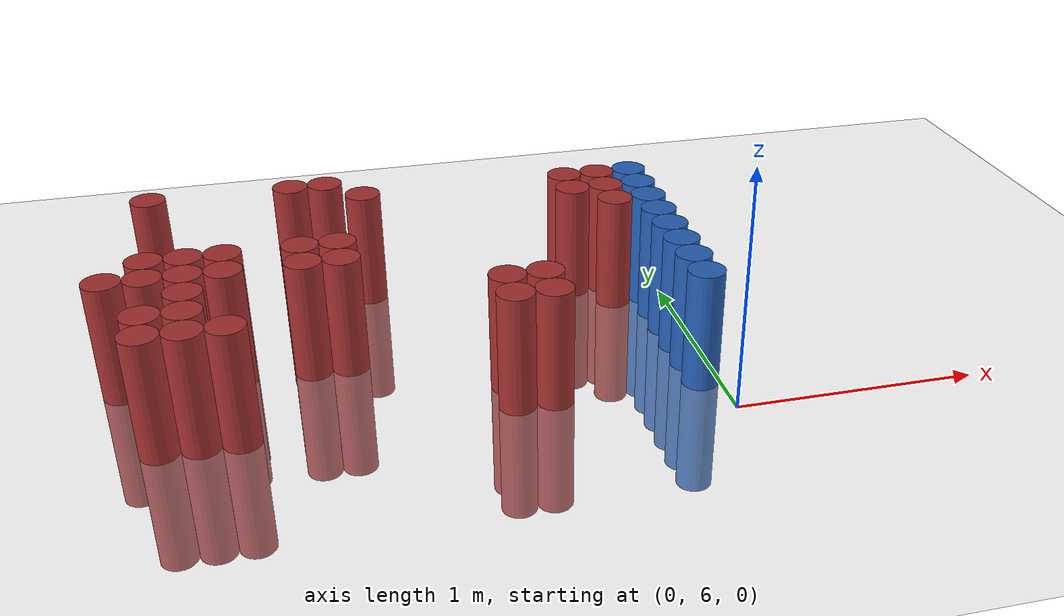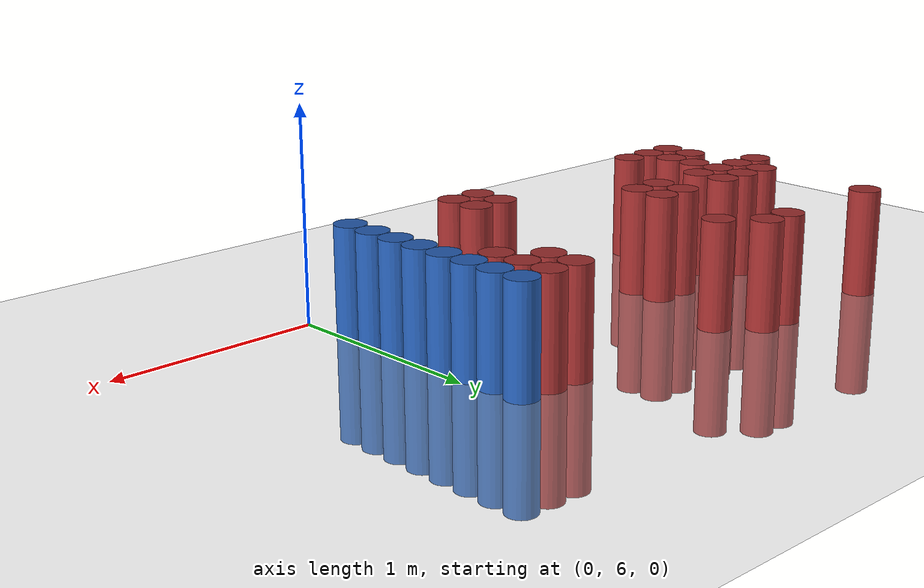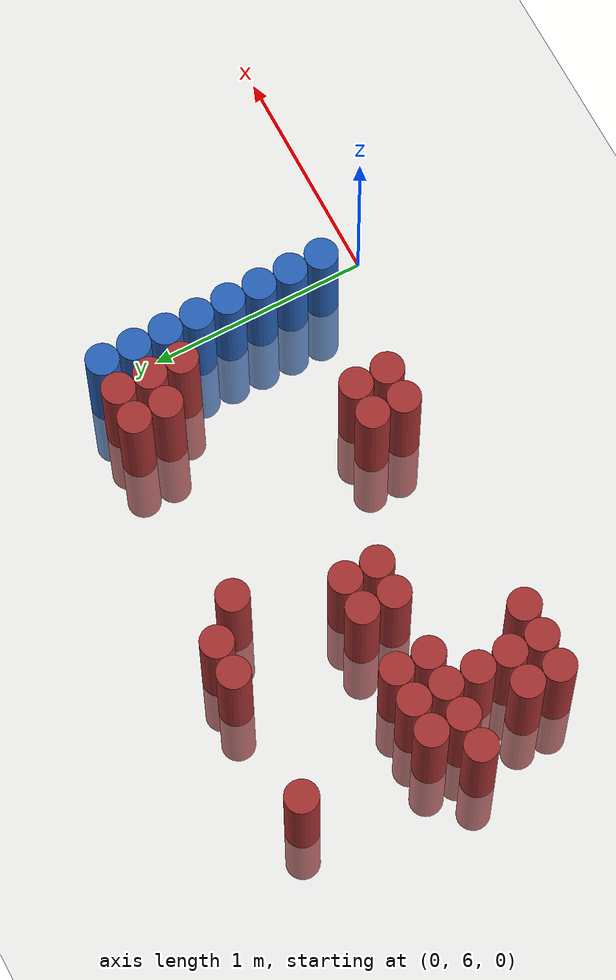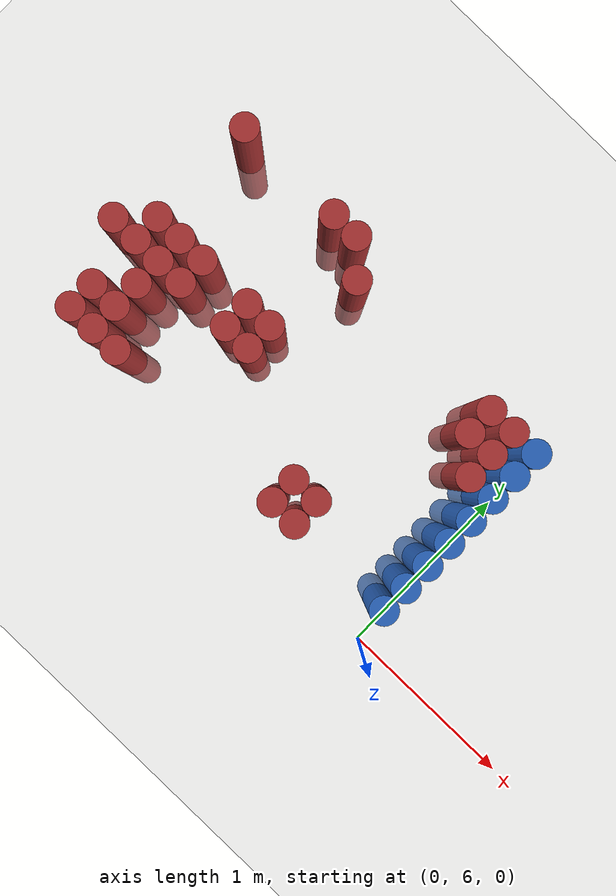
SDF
<sdf version="1.6">
 <world name="default">
  <model name="ground_plane">
   <static>1</static>
   <link name="link">
    <collision name="collision">
     <geometry><plane><normal>0 0 1</normal><size>100 100</size></plane></geometry>
     <surface><friction><ode><mu>100</mu><mu2>50</mu2></ode></friction></surface>
    </collision>
    <visual name="visual">
     <cast_shadows>0</cast_shadows>
     <geometry><plane><normal>0 0 1</normal><size>100 100</size></plane></geometry>
     <material>
      <script><uri>file://media/materials/scripts/gazebo.material</uri><name>Gazebo/Grey</name></script>
     </material>
    </visual>
   </link>
  </model>
  <model name="unit_cylinder_193">
   <static>1</static>
   <pose>-2.325000 6.675000 0.000000 0.000000 0.000000 0.000000</pose>
   <link name="link">
    <inertial>
     <mass>1</mass>
     <inertia><ixx>0.145833</ixx><ixy>0</ixy><ixz>0</ixz><iyy>0.145833</iyy><iyz>0</iyz><izz>0.125</izz></inertia>
    </inertial>
    <collision name="collision">
     <geometry><cylinder><radius>0.075000</radius><length>1</length></cylinder></geometry>
    </collision>
    <visual name="visual">
     <geometry><cylinder><radius>0.075000</radius><length>1</length></cylinder></geometry>
     <material>
      <ambient>0.648000 0.192000 0.192000 1</ambient>
      <diffuse>0.648000 0.192000 0.192000 1</diffuse>
     </material>
     <material>
      <script><name>Gazebo/Grey</name><uri>file://media/materials/scripts/gazebo.material</uri></script>
     </material>
    </visual>
    <sensor name="sensor_contact" type="contact"><contact><collision>collision</collision></contact></sensor>
   </link>
   <plugin filename="gz-sim-touchplugin-system" name="gz::sim::systems::TouchPlugin">
    <target>robot</target>
    <namespace>robot</namespace>
    <time>0.001</time>
    <enabled>true</enabled>
   </plugin>
  </model>
  <model name="unit_cylinder_197">
   <static>1</static>
   <pose>-2.175000 6.225000 0.000000 0.000000 0.000000 0.000000</pose>
   <link name="link">
    <inertial>
     <mass>1</mass>
     <inertia><ixx>0.145833</ixx><ixy>0</ixy><ixz>0</ixz><iyy>0.145833</iyy><iyz>0</iyz><izz>0.125</izz></inertia>
    </inertial>
    <collision name="collision">
     <geometry><cylinder><radius>0.075000</radius><length>1</length></cylinder></geometry>
    </collision>
    <visual name="visual">
     <geometry><cylinder><radius>0.075000</radius><length>1</length></cylinder></geometry>
     <material>
      <ambient>0.648000 0.192000 0.192000 1</ambient>
      <diffuse>0.648000 0.192000 0.192000 1</diffuse>
     </material>
     <material>
      <script><name>Gazebo/Grey</name><uri>file://media/materials/scripts/gazebo.material</uri></script>
     </material>
    </visual>
    <sensor name="sensor_contact" type="contact"><contact><collision>collision</collision></contact></sensor>
   </link>
   <plugin filename="gz-sim-touchplugin-system" name="gz::sim::systems::TouchPlugin">
    <target>robot</target>
    <namespace>robot</namespace>
    <time>0.001</time>
    <enabled>true</enabled>
   </plugin>
  </model>
  <model name="unit_cylinder_198">
   <static>1</static>
   <pose>-2.175000 6.375000 0.000000 0.000000 0.000000 0.000000</pose>
   <link name="link">
    <inertial>
     <mass>1</mass>
     <inertia><ixx>0.145833</ixx><ixy>0</ixy><ixz>0</ixz><iyy>0.145833</iyy><iyz>0</iyz><izz>0.125</izz></inertia>
    </inertial>
    <collision name="collision">
     <geometry><cylinder><radius>0.075000</radius><length>1</length></cylinder></geometry>
    </collision>
    <visual name="visual">
     <geometry><cylinder><radius>0.075000</radius><length>1</length></cylinder></geometry>
     <material>
      <ambient>0.648000 0.192000 0.192000 1</ambient>
      <diffuse>0.648000 0.192000 0.192000 1</diffuse>
     </material>
     <material>
      <script><name>Gazebo/Grey</name><uri>file://media/materials/scripts/gazebo.material</uri></script>
     </material>
    </visual>
    <sensor name="sensor_contact" type="contact"><contact><collision>collision</collision></contact></sensor>
   </link>
   <plugin filename="gz-sim-touchplugin-system" name="gz::sim::systems::TouchPlugin">
    <target>robot</target>
    <namespace>robot</namespace>
    <time>0.001</time>
    <enabled>true</enabled>
   </plugin>
  </model>
  <model name="unit_cylinder_199">
   <static>1</static>
   <pose>-2.175000 6.675000 0.000000 0.000000 0.000000 0.000000</pose>
   <link name="link">
    <inertial>
     <mass>1</mass>
     <inertia><ixx>0.145833</ixx><ixy>0</ixy><ixz>0</ixz><iyy>0.145833</iyy><iyz>0</iyz><izz>0.125</izz></inertia>
    </inertial>
    <collision name="collision">
     <geometry><cylinder><radius>0.075000</radius><length>1</length></cylinder></geometry>
    </collision>
    <visual name="visual">
     <geometry><cylinder><radius>0.075000</radius><length>1</length></cylinder></geometry>
     <material>
      <ambient>0.648000 0.192000 0.192000 1</ambient>
      <diffuse>0.648000 0.192000 0.192000 1</diffuse>
     </material>
     <material>
      <script><name>Gazebo/Grey</name><uri>file://media/materials/scripts/gazebo.material</uri></script>
     </material>
    </visual>
    <sensor name="sensor_contact" type="contact"><contact><collision>collision</collision></contact></sensor>
   </link>
   <plugin filename="gz-sim-touchplugin-system" name="gz::sim::systems::TouchPlugin">
    <target>robot</target>
    <namespace>robot</namespace>
    <time>0.001</time>
    <enabled>true</enabled>
   </plugin>
  </model>
  <model name="unit_cylinder_200">
   <static>1</static>
   <pose>-2.175000 6.825000 0.000000 0.000000 0.000000 0.000000</pose>
   <link name="link">
    <inertial>
     <mass>1</mass>
     <inertia><ixx>0.145833</ixx><ixy>0</ixy><ixz>0</ixz><iyy>0.145833</iyy><iyz>0</iyz><izz>0.125</izz></inertia>
    </inertial>
    <collision name="collision">
     <geometry><cylinder><radius>0.075000</radius><length>1</length></cylinder></geometry>
    </collision>
    <visual name="visual">
     <geometry><cylinder><radius>0.075000</radius><length>1</length></cylinder></geometry>
     <material>
      <ambient>0.648000 0.192000 0.192000 1</ambient>
      <diffuse>0.648000 0.192000 0.192000 1</diffuse>
     </material>
     <material>
      <script><name>Gazebo/Grey</name><uri>file://media/materials/scripts/gazebo.material</uri></script>
     </material>
    </visual>
    <sensor name="sensor_contact" type="contact"><contact><collision>collision</collision></contact></sensor>
   </link>
   <plugin filename="gz-sim-touchplugin-system" name="gz::sim::systems::TouchPlugin">
    <target>robot</target>
    <namespace>robot</namespace>
    <time>0.001</time>
    <enabled>true</enabled>
   </plugin>
  </model>
  <model name="unit_cylinder_201">
   <static>1</static>
   <pose>-2.175000 7.425000 0.000000 0.000000 0.000000 0.000000</pose>
   <link name="link">
    <inertial>
     <mass>1</mass>
     <inertia><ixx>0.145833</ixx><ixy>0</ixy><ixz>0</ixz><iyy>0.145833</iyy><iyz>0</iyz><izz>0.125</izz></inertia>
    </inertial>
    <collision name="collision">
     <geometry><cylinder><radius>0.075000</radius><length>1</length></cylinder></geometry>
    </collision>
    <visual name="visual">
     <geometry><cylinder><radius>0.075000</radius><length>1</length></cylinder></geometry>
     <material>
      <ambient>0.648000 0.192000 0.192000 1</ambient>
      <diffuse>0.648000 0.192000 0.192000 1</diffuse>
     </material>
     <material>
      <script><name>Gazebo/Grey</name><uri>file://media/materials/scripts/gazebo.material</uri></script>
     </material>
    </visual>
    <sensor name="sensor_contact" type="contact"><contact><collision>collision</collision></contact></sensor>
   </link>
   <plugin filename="gz-sim-touchplugin-system" name="gz::sim::systems::TouchPlugin">
    <target>robot</target>
    <namespace>robot</namespace>
    <time>0.001</time>
    <enabled>true</enabled>
   </plugin>
  </model>
  <model name="unit_cylinder_206">
   <static>1</static>
   <pose>-2.025000 6.225000 0.000000 0.000000 0.000000 0.000000</pose>
   <link name="link">
    <inertial>
     <mass>1</mass>
     <inertia><ixx>0.145833</ixx><ixy>0</ixy><ixz>0</ixz><iyy>0.145833</iyy><iyz>0</iyz><izz>0.125</izz></inertia>
    </inertial>
    <collision name="collision">
     <geometry><cylinder><radius>0.075000</radius><length>1</length></cylinder></geometry>
    </collision>
    <visual name="visual">
     <geometry><cylinder><radius>0.075000</radius><length>1</length></cylinder></geometry>
     <material>
      <ambient>0.648000 0.192000 0.192000 1</ambient>
      <diffuse>0.648000 0.192000 0.192000 1</diffuse>
     </material>
     <material>
      <script><name>Gazebo/Grey</name><uri>file://media/materials/scripts/gazebo.material</uri></script>
     </material>
    </visual>
    <sensor name="sensor_contact" type="contact"><contact><collision>collision</collision></contact></sensor>
   </link>
   <plugin filename="gz-sim-touchplugin-system" name="gz::sim::systems::TouchPlugin">
    <target>robot</target>
    <namespace>robot</namespace>
    <time>0.001</time>
    <enabled>true</enabled>
   </plugin>
  </model>
  <model name="unit_cylinder_207">
   <static>1</static>
   <pose>-2.025000 6.375000 0.000000 0.000000 0.000000 0.000000</pose>
   <link name="link">
    <inertial>
     <mass>1</mass>
     <inertia><ixx>0.145833</ixx><ixy>0</ixy><ixz>0</ixz><iyy>0.145833</iyy><iyz>0</iyz><izz>0.125</izz></inertia>
    </inertial>
    <collision name="collision">
     <geometry><cylinder><radius>0.075000</radius><length>1</length></cylinder></geometry>
    </collision>
    <visual name="visual">
     <geometry><cylinder><radius>0.075000</radius><length>1</length></cylinder></geometry>
     <material>
      <ambient>0.648000 0.192000 0.192000 1</ambient>
      <diffuse>0.648000 0.192000 0.192000 1</diffuse>
     </material>
     <material>
      <script><name>Gazebo/Grey</name><uri>file://media/materials/scripts/gazebo.material</uri></script>
     </material>
    </visual>
    <sensor name="sensor_contact" type="contact"><contact><collision>collision</collision></contact></sensor>
   </link>
   <plugin filename="gz-sim-touchplugin-system" name="gz::sim::systems::TouchPlugin">
    <target>robot</target>
    <namespace>robot</namespace>
    <time>0.001</time>
    <enabled>true</enabled>
   </plugin>
  </model>
  <model name="unit_cylinder_208">
   <static>1</static>
   <pose>-2.025000 6.525000 0.000000 0.000000 0.000000 0.000000</pose>
   <link name="link">
    <inertial>
     <mass>1</mass>
     <inertia><ixx>0.145833</ixx><ixy>0</ixy><ixz>0</ixz><iyy>0.145833</iyy><iyz>0</iyz><izz>0.125</izz></inertia>
    </inertial>
    <collision name="collision">
     <geometry><cylinder><radius>0.075000</radius><length>1</length></cylinder></geometry>
    </collision>
    <visual name="visual">
     <geometry><cylinder><radius>0.075000</radius><length>1</length></cylinder></geometry>
     <material>
      <ambient>0.648000 0.192000 0.192000 1</ambient>
      <diffuse>0.648000 0.192000 0.192000 1</diffuse>
     </material>
     <material>
      <script><name>Gazebo/Grey</name><uri>file://media/materials/scripts/gazebo.material</uri></script>
     </material>
    </visual>
    <sensor name="sensor_contact" type="contact"><contact><collision>collision</collision></contact></sensor>
   </link>
   <plugin filename="gz-sim-touchplugin-system" name="gz::sim::systems::TouchPlugin">
    <target>robot</target>
    <namespace>robot</namespace>
    <time>0.001</time>
    <enabled>true</enabled>
   </plugin>
  </model>
  <model name="unit_cylinder_209">
   <static>1</static>
   <pose>-2.025000 6.675000 0.000000 0.000000 0.000000 0.000000</pose>
   <link name="link">
    <inertial>
     <mass>1</mass>
     <inertia><ixx>0.145833</ixx><ixy>0</ixy><ixz>0</ixz><iyy>0.145833</iyy><iyz>0</iyz><izz>0.125</izz></inertia>
    </inertial>
    <collision name="collision">
     <geometry><cylinder><radius>0.075000</radius><length>1</length></cylinder></geometry>
    </collision>
    <visual name="visual">
     <geometry><cylinder><radius>0.075000</radius><length>1</length></cylinder></geometry>
     <material>
      <ambient>0.648000 0.192000 0.192000 1</ambient>
      <diffuse>0.648000 0.192000 0.192000 1</diffuse>
     </material>
     <material>
      <script><name>Gazebo/Grey</name><uri>file://media/materials/scripts/gazebo.material</uri></script>
     </material>
    </visual>
    <sensor name="sensor_contact" type="contact"><contact><collision>collision</collision></contact></sensor>
   </link>
   <plugin filename="gz-sim-touchplugin-system" name="gz::sim::systems::TouchPlugin">
    <target>robot</target>
    <namespace>robot</namespace>
    <time>0.001</time>
    <enabled>true</enabled>
   </plugin>
  </model>
  <model name="unit_cylinder_210">
   <static>1</static>
   <pose>-2.025000 6.825000 0.000000 0.000000 0.000000 0.000000</pose>
   <link name="link">
    <inertial>
     <mass>1</mass>
     <inertia><ixx>0.145833</ixx><ixy>0</ixy><ixz>0</ixz><iyy>0.145833</iyy><iyz>0</iyz><izz>0.125</izz></inertia>
    </inertial>
    <collision name="collision">
     <geometry><cylinder><radius>0.075000</radius><length>1</length></cylinder></geometry>
    </collision>
    <visual name="visual">
     <geometry><cylinder><radius>0.075000</radius><length>1</length></cylinder></geometry>
     <material>
      <ambient>0.648000 0.192000 0.192000 1</ambient>
      <diffuse>0.648000 0.192000 0.192000 1</diffuse>
     </material>
     <material>
      <script><name>Gazebo/Grey</name><uri>file://media/materials/scripts/gazebo.material</uri></script>
     </material>
    </visual>
    <sensor name="sensor_contact" type="contact"><contact><collision>collision</collision></contact></sensor>
   </link>
   <plugin filename="gz-sim-touchplugin-system" name="gz::sim::systems::TouchPlugin">
    <target>robot</target>
    <namespace>robot</namespace>
    <time>0.001</time>
    <enabled>true</enabled>
   </plugin>
  </model>
  <model name="unit_cylinder_217">
   <static>1</static>
   <pose>-1.875000 6.225000 0.000000 0.000000 0.000000 0.000000</pose>
   <link name="link">
    <inertial>
     <mass>1</mass>
     <inertia><ixx>0.145833</ixx><ixy>0</ixy><ixz>0</ixz><iyy>0.145833</iyy><iyz>0</iyz><izz>0.125</izz></inertia>
    </inertial>
    <collision name="collision">
     <geometry><cylinder><radius>0.075000</radius><length>1</length></cylinder></geometry>
    </collision>
    <visual name="visual">
     <geometry><cylinder><radius>0.075000</radius><length>1</length></cylinder></geometry>
     <material>
      <ambient>0.648000 0.192000 0.192000 1</ambient>
      <diffuse>0.648000 0.192000 0.192000 1</diffuse>
     </material>
     <material>
      <script><name>Gazebo/Grey</name><uri>file://media/materials/scripts/gazebo.material</uri></script>
     </material>
    </visual>
    <sensor name="sensor_contact" type="contact"><contact><collision>collision</collision></contact></sensor>
   </link>
   <plugin filename="gz-sim-touchplugin-system" name="gz::sim::systems::TouchPlugin">
    <target>robot</target>
    <namespace>robot</namespace>
    <time>0.001</time>
    <enabled>true</enabled>
   </plugin>
  </model>
  <model name="unit_cylinder_218">
   <static>1</static>
   <pose>-1.875000 6.675000 0.000000 0.000000 0.000000 0.000000</pose>
   <link name="link">
    <inertial>
     <mass>1</mass>
     <inertia><ixx>0.145833</ixx><ixy>0</ixy><ixz>0</ixz><iyy>0.145833</iyy><iyz>0</iyz><izz>0.125</izz></inertia>
    </inertial>
    <collision name="collision">
     <geometry><cylinder><radius>0.075000</radius><length>1</length></cylinder></geometry>
    </collision>
    <visual name="visual">
     <geometry><cylinder><radius>0.075000</radius><length>1</length></cylinder></geometry>
     <material>
      <ambient>0.648000 0.192000 0.192000 1</ambient>
      <diffuse>0.648000 0.192000 0.192000 1</diffuse>
     </material>
     <material>
      <script><name>Gazebo/Grey</name><uri>file://media/materials/scripts/gazebo.material</uri></script>
     </material>
    </visual>
    <sensor name="sensor_contact" type="contact"><contact><collision>collision</collision></contact></sensor>
   </link>
   <plugin filename="gz-sim-touchplugin-system" name="gz::sim::systems::TouchPlugin">
    <target>robot</target>
    <namespace>robot</namespace>
    <time>0.001</time>
    <enabled>true</enabled>
   </plugin>
  </model>
  <model name="unit_cylinder_219">
   <static>1</static>
   <pose>-1.875000 6.825000 0.000000 0.000000 0.000000 0.000000</pose>
   <link name="link">
    <inertial>
     <mass>1</mass>
     <inertia><ixx>0.145833</ixx><ixy>0</ixy><ixz>0</ixz><iyy>0.145833</iyy><iyz>0</iyz><izz>0.125</izz></inertia>
    </inertial>
    <collision name="collision">
     <geometry><cylinder><radius>0.075000</radius><length>1</length></cylinder></geometry>
    </collision>
    <visual name="visual">
     <geometry><cylinder><radius>0.075000</radius><length>1</length></cylinder></geometry>
     <material>
      <ambient>0.648000 0.192000 0.192000 1</ambient>
      <diffuse>0.648000 0.192000 0.192000 1</diffuse>
     </material>
     <material>
      <script><name>Gazebo/Grey</name><uri>file://media/materials/scripts/gazebo.material</uri></script>
     </material>
    </visual>
    <sensor name="sensor_contact" type="contact"><contact><collision>collision</collision></contact></sensor>
   </link>
   <plugin filename="gz-sim-touchplugin-system" name="gz::sim::systems::TouchPlugin">
    <target>robot</target>
    <namespace>robot</namespace>
    <time>0.001</time>
    <enabled>true</enabled>
   </plugin>
  </model>
  <model name="unit_cylinder_238">
   <static>1</static>
   <pose>-1.575000 6.675000 0.000000 0.000000 0.000000 0.000000</pose>
   <link name="link">
    <inertial>
     <mass>1</mass>
     <inertia><ixx>0.145833</ixx><ixy>0</ixy><ixz>0</ixz><iyy>0.145833</iyy><iyz>0</iyz><izz>0.125</izz></inertia>
    </inertial>
    <collision name="collision">
     <geometry><cylinder><radius>0.075000</radius><length>1</length></cylinder></geometry>
    </collision>
    <visual name="visual">
     <geometry><cylinder><radius>0.075000</radius><length>1</length></cylinder></geometry>
     <material>
      <ambient>0.648000 0.192000 0.192000 1</ambient>
      <diffuse>0.648000 0.192000 0.192000 1</diffuse>
     </material>
     <material>
      <script><name>Gazebo/Grey</name><uri>file://media/materials/scripts/gazebo.material</uri></script>
     </material>
    </visual>
    <sensor name="sensor_contact" type="contact"><contact><collision>collision</collision></contact></sensor>
   </link>
   <plugin filename="gz-sim-touchplugin-system" name="gz::sim::systems::TouchPlugin">
    <target>robot</target>
    <namespace>robot</namespace>
    <time>0.001</time>
    <enabled>true</enabled>
   </plugin>
  </model>
  <model name="unit_cylinder_239">
   <static>1</static>
   <pose>-1.575000 6.825000 0.000000 0.000000 0.000000 0.000000</pose>
   <link name="link">
    <inertial>
     <mass>1</mass>
     <inertia><ixx>0.145833</ixx><ixy>0</ixy><ixz>0</ixz><iyy>0.145833</iyy><iyz>0</iyz><izz>0.125</izz></inertia>
    </inertial>
    <collision name="collision">
     <geometry><cylinder><radius>0.075000</radius><length>1</length></cylinder></geometry>
    </collision>
    <visual name="visual">
     <geometry><cylinder><radius>0.075000</radius><length>1</length></cylinder></geometry>
     <material>
      <ambient>0.648000 0.192000 0.192000 1</ambient>
      <diffuse>0.648000 0.192000 0.192000 1</diffuse>
     </material>
     <material>
      <script><name>Gazebo/Grey</name><uri>file://media/materials/scripts/gazebo.material</uri></script>
     </material>
    </visual>
    <sensor name="sensor_contact" type="contact"><contact><collision>collision</collision></contact></sensor>
   </link>
   <plugin filename="gz-sim-touchplugin-system" name="gz::sim::systems::TouchPlugin">
    <target>robot</target>
    <namespace>robot</namespace>
    <time>0.001</time>
    <enabled>true</enabled>
   </plugin>
  </model>
  <model name="unit_cylinder_240">
   <static>1</static>
   <pose>-1.575000 7.425000 0.000000 0.000000 0.000000 0.000000</pose>
   <link name="link">
    <inertial>
     <mass>1</mass>
     <inertia><ixx>0.145833</ixx><ixy>0</ixy><ixz>0</ixz><iyy>0.145833</iyy><iyz>0</iyz><izz>0.125</izz></inertia>
    </inertial>
    <collision name="collision">
     <geometry><cylinder><radius>0.075000</radius><length>1</length></cylinder></geometry>
    </collision>
    <visual name="visual">
     <geometry><cylinder><radius>0.075000</radius><length>1</length></cylinder></geometry>
     <material>
      <ambient>0.648000 0.192000 0.192000 1</ambient>
      <diffuse>0.648000 0.192000 0.192000 1</diffuse>
     </material>
     <material>
      <script><name>Gazebo/Grey</name><uri>file://media/materials/scripts/gazebo.material</uri></script>
     </material>
    </visual>
    <sensor name="sensor_contact" type="contact"><contact><collision>collision</collision></contact></sensor>
   </link>
   <plugin filename="gz-sim-touchplugin-system" name="gz::sim::systems::TouchPlugin">
    <target>robot</target>
    <namespace>robot</namespace>
    <time>0.001</time>
    <enabled>true</enabled>
   </plugin>
  </model>
  <model name="unit_cylinder_245">
   <static>1</static>
   <pose>-1.425000 6.675000 0.000000 0.000000 0.000000 0.000000</pose>
   <link name="link">
    <inertial>
     <mass>1</mass>
     <inertia><ixx>0.145833</ixx><ixy>0</ixy><ixz>0</ixz><iyy>0.145833</iyy><iyz>0</iyz><izz>0.125</izz></inertia>
    </inertial>
    <collision name="collision">
     <geometry><cylinder><radius>0.075000</radius><length>1</length></cylinder></geometry>
    </collision>
    <visual name="visual">
     <geometry><cylinder><radius>0.075000</radius><length>1</length></cylinder></geometry>
     <material>
      <ambient>0.648000 0.192000 0.192000 1</ambient>
      <diffuse>0.648000 0.192000 0.192000 1</diffuse>
     </material>
     <material>
      <script><name>Gazebo/Grey</name><uri>file://media/materials/scripts/gazebo.material</uri></script>
     </material>
    </visual>
    <sensor name="sensor_contact" type="contact"><contact><collision>collision</collision></contact></sensor>
   </link>
   <plugin filename="gz-sim-touchplugin-system" name="gz::sim::systems::TouchPlugin">
    <target>robot</target>
    <namespace>robot</namespace>
    <time>0.001</time>
    <enabled>true</enabled>
   </plugin>
  </model>
  <model name="unit_cylinder_246">
   <static>1</static>
   <pose>-1.425000 6.825000 0.000000 0.000000 0.000000 0.000000</pose>
   <link name="link">
    <inertial>
     <mass>1</mass>
     <inertia><ixx>0.145833</ixx><ixy>0</ixy><ixz>0</ixz><iyy>0.145833</iyy><iyz>0</iyz><izz>0.125</izz></inertia>
    </inertial>
    <collision name="collision">
     <geometry><cylinder><radius>0.075000</radius><length>1</length></cylinder></geometry>
    </collision>
    <visual name="visual">
     <geometry><cylinder><radius>0.075000</radius><length>1</length></cylinder></geometry>
     <material>
      <ambient>0.648000 0.192000 0.192000 1</ambient>
      <diffuse>0.648000 0.192000 0.192000 1</diffuse>
     </material>
     <material>
      <script><name>Gazebo/Grey</name><uri>file://media/materials/scripts/gazebo.material</uri></script>
     </material>
    </visual>
    <sensor name="sensor_contact" type="contact"><contact><collision>collision</collision></contact></sensor>
   </link>
   <plugin filename="gz-sim-touchplugin-system" name="gz::sim::systems::TouchPlugin">
    <target>robot</target>
    <namespace>robot</namespace>
    <time>0.001</time>
    <enabled>true</enabled>
   </plugin>
  </model>
  <model name="unit_cylinder_247">
   <static>1</static>
   <pose>-1.425000 7.425000 0.000000 0.000000 0.000000 0.000000</pose>
   <link name="link">
    <inertial>
     <mass>1</mass>
     <inertia><ixx>0.145833</ixx><ixy>0</ixy><ixz>0</ixz><iyy>0.145833</iyy><iyz>0</iyz><izz>0.125</izz></inertia>
    </inertial>
    <collision name="collision">
     <geometry><cylinder><radius>0.075000</radius><length>1</length></cylinder></geometry>
    </collision>
    <visual name="visual">
     <geometry><cylinder><radius>0.075000</radius><length>1</length></cylinder></geometry>
     <material>
      <ambient>0.648000 0.192000 0.192000 1</ambient>
      <diffuse>0.648000 0.192000 0.192000 1</diffuse>
     </material>
     <material>
      <script><name>Gazebo/Grey</name><uri>file://media/materials/scripts/gazebo.material</uri></script>
     </material>
    </visual>
    <sensor name="sensor_contact" type="contact"><contact><collision>collision</collision></contact></sensor>
   </link>
   <plugin filename="gz-sim-touchplugin-system" name="gz::sim::systems::TouchPlugin">
    <target>robot</target>
    <namespace>robot</namespace>
    <time>0.001</time>
    <enabled>true</enabled>
   </plugin>
  </model>
  <model name="unit_cylinder_252">
   <static>1</static>
   <pose>-1.275000 7.275000 0.000000 0.000000 0.000000 0.000000</pose>
   <link name="link">
    <inertial>
     <mass>1</mass>
     <inertia><ixx>0.145833</ixx><ixy>0</ixy><ixz>0</ixz><iyy>0.145833</iyy><iyz>0</iyz><izz>0.125</izz></inertia>
    </inertial>
    <collision name="collision">
     <geometry><cylinder><radius>0.075000</radius><length>1</length></cylinder></geometry>
    </collision>
    <visual name="visual">
     <geometry><cylinder><radius>0.075000</radius><length>1</length></cylinder></geometry>
     <material>
      <ambient>0.648000 0.192000 0.192000 1</ambient>
      <diffuse>0.648000 0.192000 0.192000 1</diffuse>
     </material>
     <material>
      <script><name>Gazebo/Grey</name><uri>file://media/materials/scripts/gazebo.material</uri></script>
     </material>
    </visual>
    <sensor name="sensor_contact" type="contact"><contact><collision>collision</collision></contact></sensor>
   </link>
   <plugin filename="gz-sim-touchplugin-system" name="gz::sim::systems::TouchPlugin">
    <target>robot</target>
    <namespace>robot</namespace>
    <time>0.001</time>
    <enabled>true</enabled>
   </plugin>
  </model>
  <model name="unit_cylinder_269">
   <static>1</static>
   <pose>-0.825000 6.225000 0.000000 0.000000 0.000000 0.000000</pose>
   <link name="link">
    <inertial>
     <mass>1</mass>
     <inertia><ixx>0.145833</ixx><ixy>0</ixy><ixz>0</ixz><iyy>0.145833</iyy><iyz>0</iyz><izz>0.125</izz></inertia>
    </inertial>
    <collision name="collision">
     <geometry><cylinder><radius>0.075000</radius><length>1</length></cylinder></geometry>
    </collision>
    <visual name="visual">
     <geometry><cylinder><radius>0.075000</radius><length>1</length></cylinder></geometry>
     <material>
      <ambient>0.648000 0.192000 0.192000 1</ambient>
      <diffuse>0.648000 0.192000 0.192000 1</diffuse>
     </material>
     <material>
      <script><name>Gazebo/Grey</name><uri>file://media/materials/scripts/gazebo.material</uri></script>
     </material>
    </visual>
    <sensor name="sensor_contact" type="contact"><contact><collision>collision</collision></contact></sensor>
   </link>
   <plugin filename="gz-sim-touchplugin-system" name="gz::sim::systems::TouchPlugin">
    <target>robot</target>
    <namespace>robot</namespace>
    <time>0.001</time>
    <enabled>true</enabled>
   </plugin>
  </model>
  <model name="unit_cylinder_270">
   <static>1</static>
   <pose>-0.825000 6.375000 0.000000 0.000000 0.000000 0.000000</pose>
   <link name="link">
    <inertial>
     <mass>1</mass>
     <inertia><ixx>0.145833</ixx><ixy>0</ixy><ixz>0</ixz><iyy>0.145833</iyy><iyz>0</iyz><izz>0.125</izz></inertia>
    </inertial>
    <collision name="collision">
     <geometry><cylinder><radius>0.075000</radius><length>1</length></cylinder></geometry>
    </collision>
    <visual name="visual">
     <geometry><cylinder><radius>0.075000</radius><length>1</length></cylinder></geometry>
     <material>
      <ambient>0.648000 0.192000 0.192000 1</ambient>
      <diffuse>0.648000 0.192000 0.192000 1</diffuse>
     </material>
     <material>
      <script><name>Gazebo/Grey</name><uri>file://media/materials/scripts/gazebo.material</uri></script>
     </material>
    </visual>
    <sensor name="sensor_contact" type="contact"><contact><collision>collision</collision></contact></sensor>
   </link>
   <plugin filename="gz-sim-touchplugin-system" name="gz::sim::systems::TouchPlugin">
    <target>robot</target>
    <namespace>robot</namespace>
    <time>0.001</time>
    <enabled>true</enabled>
   </plugin>
  </model>
  <model name="unit_cylinder_278">
   <static>1</static>
   <pose>-0.675000 6.225000 0.000000 0.000000 0.000000 0.000000</pose>
   <link name="link">
    <inertial>
     <mass>1</mass>
     <inertia><ixx>0.145833</ixx><ixy>0</ixy><ixz>0</ixz><iyy>0.145833</iyy><iyz>0</iyz><izz>0.125</izz></inertia>
    </inertial>
    <collision name="collision">
     <geometry><cylinder><radius>0.075000</radius><length>1</length></cylinder></geometry>
    </collision>
    <visual name="visual">
     <geometry><cylinder><radius>0.075000</radius><length>1</length></cylinder></geometry>
     <material>
      <ambient>0.648000 0.192000 0.192000 1</ambient>
      <diffuse>0.648000 0.192000 0.192000 1</diffuse>
     </material>
     <material>
      <script><name>Gazebo/Grey</name><uri>file://media/materials/scripts/gazebo.material</uri></script>
     </material>
    </visual>
    <sensor name="sensor_contact" type="contact"><contact><collision>collision</collision></contact></sensor>
   </link>
   <plugin filename="gz-sim-touchplugin-system" name="gz::sim::systems::TouchPlugin">
    <target>robot</target>
    <namespace>robot</namespace>
    <time>0.001</time>
    <enabled>true</enabled>
   </plugin>
  </model>
  <model name="unit_cylinder_279">
   <static>1</static>
   <pose>-0.675000 6.375000 0.000000 0.000000 0.000000 0.000000</pose>
   <link name="link">
    <inertial>
     <mass>1</mass>
     <inertia><ixx>0.145833</ixx><ixy>0</ixy><ixz>0</ixz><iyy>0.145833</iyy><iyz>0</iyz><izz>0.125</izz></inertia>
    </inertial>
    <collision name="collision">
     <geometry><cylinder><radius>0.075000</radius><length>1</length></cylinder></geometry>
    </collision>
    <visual name="visual">
     <geometry><cylinder><radius>0.075000</radius><length>1</length></cylinder></geometry>
     <material>
      <ambient>0.648000 0.192000 0.192000 1</ambient>
      <diffuse>0.648000 0.192000 0.192000 1</diffuse>
     </material>
     <material>
      <script><name>Gazebo/Grey</name><uri>file://media/materials/scripts/gazebo.material</uri></script>
     </material>
    </visual>
    <sensor name="sensor_contact" type="contact"><contact><collision>collision</collision></contact></sensor>
   </link>
   <plugin filename="gz-sim-touchplugin-system" name="gz::sim::systems::TouchPlugin">
    <target>robot</target>
    <namespace>robot</namespace>
    <time>0.001</time>
    <enabled>true</enabled>
   </plugin>
  </model>
  <model name="unit_cylinder_284">
   <static>1</static>
   <pose>-0.375000 7.125000 0.000000 0.000000 0.000000 0.000000</pose>
   <link name="link">
    <inertial>
     <mass>1</mass>
     <inertia><ixx>0.145833</ixx><ixy>0</ixy><ixz>0</ixz><iyy>0.145833</iyy><iyz>0</iyz><izz>0.125</izz></inertia>
    </inertial>
    <collision name="collision">
     <geometry><cylinder><radius>0.075000</radius><length>1</length></cylinder></geometry>
    </collision>
    <visual name="visual">
     <geometry><cylinder><radius>0.075000</radius><length>1</length></cylinder></geometry>
     <material>
      <ambient>0.648000 0.192000 0.192000 1</ambient>
      <diffuse>0.648000 0.192000 0.192000 1</diffuse>
     </material>
     <material>
      <script><name>Gazebo/Grey</name><uri>file://media/materials/scripts/gazebo.material</uri></script>
     </material>
    </visual>
    <sensor name="sensor_contact" type="contact"><contact><collision>collision</collision></contact></sensor>
   </link>
   <plugin filename="gz-sim-touchplugin-system" name="gz::sim::systems::TouchPlugin">
    <target>robot</target>
    <namespace>robot</namespace>
    <time>0.001</time>
    <enabled>true</enabled>
   </plugin>
  </model>
  <model name="unit_cylinder_285">
   <static>1</static>
   <pose>-0.375000 7.275000 0.000000 0.000000 0.000000 0.000000</pose>
   <link name="link">
    <inertial>
     <mass>1</mass>
     <inertia><ixx>0.145833</ixx><ixy>0</ixy><ixz>0</ixz><iyy>0.145833</iyy><iyz>0</iyz><izz>0.125</izz></inertia>
    </inertial>
    <collision name="collision">
     <geometry><cylinder><radius>0.075000</radius><length>1</length></cylinder></geometry>
    </collision>
    <visual name="visual">
     <geometry><cylinder><radius>0.075000</radius><length>1</length></cylinder></geometry>
     <material>
      <ambient>0.648000 0.192000 0.192000 1</ambient>
      <diffuse>0.648000 0.192000 0.192000 1</diffuse>
     </material>
     <material>
      <script><name>Gazebo/Grey</name><uri>file://media/materials/scripts/gazebo.material</uri></script>
     </material>
    </visual>
    <sensor name="sensor_contact" type="contact"><contact><collision>collision</collision></contact></sensor>
   </link>
   <plugin filename="gz-sim-touchplugin-system" name="gz::sim::systems::TouchPlugin">
    <target>robot</target>
    <namespace>robot</namespace>
    <time>0.001</time>
    <enabled>true</enabled>
   </plugin>
  </model>
  <model name="unit_cylinder_297">
   <static>1</static>
   <pose>-0.225000 6.975000 0.000000 0.000000 0.000000 0.000000</pose>
   <link name="link">
    <inertial>
     <mass>1</mass>
     <inertia><ixx>0.145833</ixx><ixy>0</ixy><ixz>0</ixz><iyy>0.145833</iyy><iyz>0</iyz><izz>0.125</izz></inertia>
    </inertial>
    <collision name="collision">
     <geometry><cylinder><radius>0.075000</radius><length>1</length></cylinder></geometry>
    </collision>
    <visual name="visual">
     <geometry><cylinder><radius>0.075000</radius><length>1</length></cylinder></geometry>
     <material>
      <ambient>0.648000 0.192000 0.192000 1</ambient>
      <diffuse>0.648000 0.192000 0.192000 1</diffuse>
     </material>
     <material>
      <script><name>Gazebo/Grey</name><uri>file://media/materials/scripts/gazebo.material</uri></script>
     </material>
    </visual>
    <sensor name="sensor_contact" type="contact"><contact><collision>collision</collision></contact></sensor>
   </link>
   <plugin filename="gz-sim-touchplugin-system" name="gz::sim::systems::TouchPlugin">
    <target>robot</target>
    <namespace>robot</namespace>
    <time>0.001</time>
    <enabled>true</enabled>
   </plugin>
  </model>
  <model name="unit_cylinder_298">
   <static>1</static>
   <pose>-0.225000 7.125000 0.000000 0.000000 0.000000 0.000000</pose>
   <link name="link">
    <inertial>
     <mass>1</mass>
     <inertia><ixx>0.145833</ixx><ixy>0</ixy><ixz>0</ixz><iyy>0.145833</iyy><iyz>0</iyz><izz>0.125</izz></inertia>
    </inertial>
    <collision name="collision">
     <geometry><cylinder><radius>0.075000</radius><length>1</length></cylinder></geometry>
    </collision>
    <visual name="visual">
     <geometry><cylinder><radius>0.075000</radius><length>1</length></cylinder></geometry>
     <material>
      <ambient>0.648000 0.192000 0.192000 1</ambient>
      <diffuse>0.648000 0.192000 0.192000 1</diffuse>
     </material>
     <material>
      <script><name>Gazebo/Grey</name><uri>file://media/materials/scripts/gazebo.material</uri></script>
     </material>
    </visual>
    <sensor name="sensor_contact" type="contact"><contact><collision>collision</collision></contact></sensor>
   </link>
   <plugin filename="gz-sim-touchplugin-system" name="gz::sim::systems::TouchPlugin">
    <target>robot</target>
    <namespace>robot</namespace>
    <time>0.001</time>
    <enabled>true</enabled>
   </plugin>
  </model>
  <model name="unit_cylinder_299">
   <static>1</static>
   <pose>-0.225000 7.275000 0.000000 0.000000 0.000000 0.000000</pose>
   <link name="link">
    <inertial>
     <mass>1</mass>
     <inertia><ixx>0.145833</ixx><ixy>0</ixy><ixz>0</ixz><iyy>0.145833</iyy><iyz>0</iyz><izz>0.125</izz></inertia>
    </inertial>
    <collision name="collision">
     <geometry><cylinder><radius>0.075000</radius><length>1</length></cylinder></geometry>
    </collision>
    <visual name="visual">
     <geometry><cylinder><radius>0.075000</radius><length>1</length></cylinder></geometry>
     <material>
      <ambient>0.648000 0.192000 0.192000 1</ambient>
      <diffuse>0.648000 0.192000 0.192000 1</diffuse>
     </material>
     <material>
      <script><name>Gazebo/Grey</name><uri>file://media/materials/scripts/gazebo.material</uri></script>
     </material>
    </visual>
    <sensor name="sensor_contact" type="contact"><contact><collision>collision</collision></contact></sensor>
   </link>
   <plugin filename="gz-sim-touchplugin-system" name="gz::sim::systems::TouchPlugin">
    <target>robot</target>
    <namespace>robot</namespace>
    <time>0.001</time>
    <enabled>true</enabled>
   </plugin>
  </model>
  <model name="unit_cylinder_318">
   <static>1</static>
   <pose>-0.075000 6.225000 0.000000 0.000000 0.000000 0.000000</pose>
   <link name="link">
    <inertial>
     <mass>1</mass>
     <inertia><ixx>0.145833</ixx><ixy>0</ixy><ixz>0</ixz><iyy>0.145833</iyy><iyz>0</iyz><izz>0.125</izz></inertia>
    </inertial>
    <collision name="collision">
     <geometry><cylinder><radius>0.075000</radius><length>1</length></cylinder></geometry>
    </collision>
    <visual name="visual">
     <geometry><cylinder><radius>0.075000</radius><length>1</length></cylinder></geometry>
     <material>
      <ambient>0.152000 0.379000 0.720000 1</ambient>
      <diffuse>0.152000 0.379000 0.720000 1</diffuse>
     </material>
     <material>
      <script><name>Gazebo/Grey</name><uri>file://media/materials/scripts/gazebo.material</uri></script>
     </material>
    </visual>
    <sensor name="sensor_contact" type="contact"><contact><collision>collision</collision></contact></sensor>
   </link>
   <plugin filename="gz-sim-touchplugin-system" name="gz::sim::systems::TouchPlugin">
    <target>robot</target>
    <namespace>robot</namespace>
    <time>0.001</time>
    <enabled>true</enabled>
   </plugin>
  </model>
  <model name="unit_cylinder_319">
   <static>1</static>
   <pose>-0.075000 6.375000 0.000000 0.000000 0.000000 0.000000</pose>
   <link name="link">
    <inertial>
     <mass>1</mass>
     <inertia><ixx>0.145833</ixx><ixy>0</ixy><ixz>0</ixz><iyy>0.145833</iyy><iyz>0</iyz><izz>0.125</izz></inertia>
    </inertial>
    <collision name="collision">
     <geometry><cylinder><radius>0.075000</radius><length>1</length></cylinder></geometry>
    </collision>
    <visual name="visual">
     <geometry><cylinder><radius>0.075000</radius><length>1</length></cylinder></geometry>
     <material>
      <ambient>0.152000 0.379000 0.720000 1</ambient>
      <diffuse>0.152000 0.379000 0.720000 1</diffuse>
     </material>
     <material>
      <script><name>Gazebo/Grey</name><uri>file://media/materials/scripts/gazebo.material</uri></script>
     </material>
    </visual>
    <sensor name="sensor_contact" type="contact"><contact><collision>collision</collision></contact></sensor>
   </link>
   <plugin filename="gz-sim-touchplugin-system" name="gz::sim::systems::TouchPlugin">
    <target>robot</target>
    <namespace>robot</namespace>
    <time>0.001</time>
    <enabled>true</enabled>
   </plugin>
  </model>
  <model name="unit_cylinder_320">
   <static>1</static>
   <pose>-0.075000 6.525000 0.000000 0.000000 0.000000 0.000000</pose>
   <link name="link">
    <inertial>
     <mass>1</mass>
     <inertia><ixx>0.145833</ixx><ixy>0</ixy><ixz>0</ixz><iyy>0.145833</iyy><iyz>0</iyz><izz>0.125</izz></inertia>
    </inertial>
    <collision name="collision">
     <geometry><cylinder><radius>0.075000</radius><length>1</length></cylinder></geometry>
    </collision>
    <visual name="visual">
     <geometry><cylinder><radius>0.075000</radius><length>1</length></cylinder></geometry>
     <material>
      <ambient>0.152000 0.379000 0.720000 1</ambient>
      <diffuse>0.152000 0.379000 0.720000 1</diffuse>
     </material>
     <material>
      <script><name>Gazebo/Grey</name><uri>file://media/materials/scripts/gazebo.material</uri></script>
     </material>
    </visual>
    <sensor name="sensor_contact" type="contact"><contact><collision>collision</collision></contact></sensor>
   </link>
   <plugin filename="gz-sim-touchplugin-system" name="gz::sim::systems::TouchPlugin">
    <target>robot</target>
    <namespace>robot</namespace>
    <time>0.001</time>
    <enabled>true</enabled>
   </plugin>
  </model>
  <model name="unit_cylinder_321">
   <static>1</static>
   <pose>-0.075000 6.675000 0.000000 0.000000 0.000000 0.000000</pose>
   <link name="link">
    <inertial>
     <mass>1</mass>
     <inertia><ixx>0.145833</ixx><ixy>0</ixy><ixz>0</ixz><iyy>0.145833</iyy><iyz>0</iyz><izz>0.125</izz></inertia>
    </inertial>
    <collision name="collision">
     <geometry><cylinder><radius>0.075000</radius><length>1</length></cylinder></geometry>
    </collision>
    <visual name="visual">
     <geometry><cylinder><radius>0.075000</radius><length>1</length></cylinder></geometry>
     <material>
      <ambient>0.152000 0.379000 0.720000 1</ambient>
      <diffuse>0.152000 0.379000 0.720000 1</diffuse>
     </material>
     <material>
      <script><name>Gazebo/Grey</name><uri>file://media/materials/scripts/gazebo.material</uri></script>
     </material>
    </visual>
    <sensor name="sensor_contact" type="contact"><contact><collision>collision</collision></contact></sensor>
   </link>
   <plugin filename="gz-sim-touchplugin-system" name="gz::sim::systems::TouchPlugin">
    <target>robot</target>
    <namespace>robot</namespace>
    <time>0.001</time>
    <enabled>true</enabled>
   </plugin>
  </model>
  <model name="unit_cylinder_322">
   <static>1</static>
   <pose>-0.075000 6.825000 0.000000 0.000000 0.000000 0.000000</pose>
   <link name="link">
    <inertial>
     <mass>1</mass>
     <inertia><ixx>0.145833</ixx><ixy>0</ixy><ixz>0</ixz><iyy>0.145833</iyy><iyz>0</iyz><izz>0.125</izz></inertia>
    </inertial>
    <collision name="collision">
     <geometry><cylinder><radius>0.075000</radius><length>1</length></cylinder></geometry>
    </collision>
    <visual name="visual">
     <geometry><cylinder><radius>0.075000</radius><length>1</length></cylinder></geometry>
     <material>
      <ambient>0.152000 0.379000 0.720000 1</ambient>
      <diffuse>0.152000 0.379000 0.720000 1</diffuse>
     </material>
     <material>
      <script><name>Gazebo/Grey</name><uri>file://media/materials/scripts/gazebo.material</uri></script>
     </material>
    </visual>
    <sensor name="sensor_contact" type="contact"><contact><collision>collision</collision></contact></sensor>
   </link>
   <plugin filename="gz-sim-touchplugin-system" name="gz::sim::systems::TouchPlugin">
    <target>robot</target>
    <namespace>robot</namespace>
    <time>0.001</time>
    <enabled>true</enabled>
   </plugin>
  </model>
  <model name="unit_cylinder_323">
   <static>1</static>
   <pose>-0.075000 6.975000 0.000000 0.000000 0.000000 0.000000</pose>
   <link name="link">
    <inertial>
     <mass>1</mass>
     <inertia><ixx>0.145833</ixx><ixy>0</ixy><ixz>0</ixz><iyy>0.145833</iyy><iyz>0</iyz><izz>0.125</izz></inertia>
    </inertial>
    <collision name="collision">
     <geometry><cylinder><radius>0.075000</radius><length>1</length></cylinder></geometry>
    </collision>
    <visual name="visual">
     <geometry><cylinder><radius>0.075000</radius><length>1</length></cylinder></geometry>
     <material>
      <ambient>0.152000 0.379000 0.720000 1</ambient>
      <diffuse>0.152000 0.379000 0.720000 1</diffuse>
     </material>
     <material>
      <script><name>Gazebo/Grey</name><uri>file://media/materials/scripts/gazebo.material</uri></script>
     </material>
    </visual>
    <sensor name="sensor_contact" type="contact"><contact><collision>collision</collision></contact></sensor>
   </link>
   <plugin filename="gz-sim-touchplugin-system" name="gz::sim::systems::TouchPlugin">
    <target>robot</target>
    <namespace>robot</namespace>
    <time>0.001</time>
    <enabled>true</enabled>
   </plugin>
  </model>
  <model name="unit_cylinder_324">
   <static>1</static>
   <pose>-0.075000 7.125000 0.000000 0.000000 0.000000 0.000000</pose>
   <link name="link">
    <inertial>
     <mass>1</mass>
     <inertia><ixx>0.145833</ixx><ixy>0</ixy><ixz>0</ixz><iyy>0.145833</iyy><iyz>0</iyz><izz>0.125</izz></inertia>
    </inertial>
    <collision name="collision">
     <geometry><cylinder><radius>0.075000</radius><length>1</length></cylinder></geometry>
    </collision>
    <visual name="visual">
     <geometry><cylinder><radius>0.075000</radius><length>1</length></cylinder></geometry>
     <material>
      <ambient>0.152000 0.379000 0.720000 1</ambient>
      <diffuse>0.152000 0.379000 0.720000 1</diffuse>
     </material>
     <material>
      <script><name>Gazebo/Grey</name><uri>file://media/materials/scripts/gazebo.material</uri></script>
     </material>
    </visual>
    <sensor name="sensor_contact" type="contact"><contact><collision>collision</collision></contact></sensor>
   </link>
   <plugin filename="gz-sim-touchplugin-system" name="gz::sim::systems::TouchPlugin">
    <target>robot</target>
    <namespace>robot</namespace>
    <time>0.001</time>
    <enabled>true</enabled>
   </plugin>
  </model>
  <model name="unit_cylinder_325">
   <static>1</static>
   <pose>-0.075000 7.275000 0.000000 0.000000 0.000000 0.000000</pose>
   <link name="link">
    <inertial>
     <mass>1</mass>
     <inertia><ixx>0.145833</ixx><ixy>0</ixy><ixz>0</ixz><iyy>0.145833</iyy><iyz>0</iyz><izz>0.125</izz></inertia>
    </inertial>
    <collision name="collision">
     <geometry><cylinder><radius>0.075000</radius><length>1</length></cylinder></geometry>
    </collision>
    <visual name="visual">
     <geometry><cylinder><radius>0.075000</radius><length>1</length></cylinder></geometry>
     <material>
      <ambient>0.152000 0.379000 0.720000 1</ambient>
      <diffuse>0.152000 0.379000 0.720000 1</diffuse>
     </material>
     <material>
      <script><name>Gazebo/Grey</name><uri>file://media/materials/scripts/gazebo.material</uri></script>
     </material>
    </visual>
    <sensor name="sensor_contact" type="contact"><contact><collision>collision</collision></contact></sensor>
   </link>
   <plugin filename="gz-sim-touchplugin-system" name="gz::sim::systems::TouchPlugin">
    <target>robot</target>
    <namespace>robot</namespace>
    <time>0.001</time>
    <enabled>true</enabled>
   </plugin>
  </model>
 </world>
</sdf>
